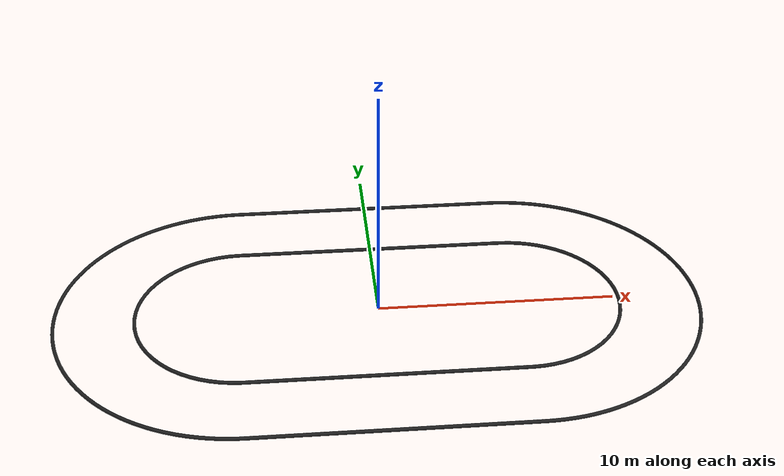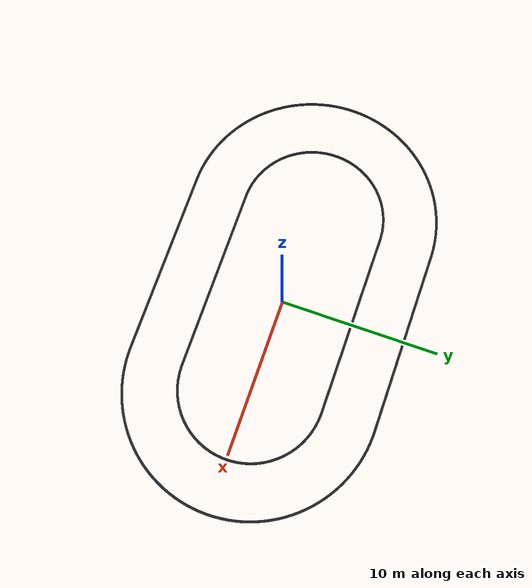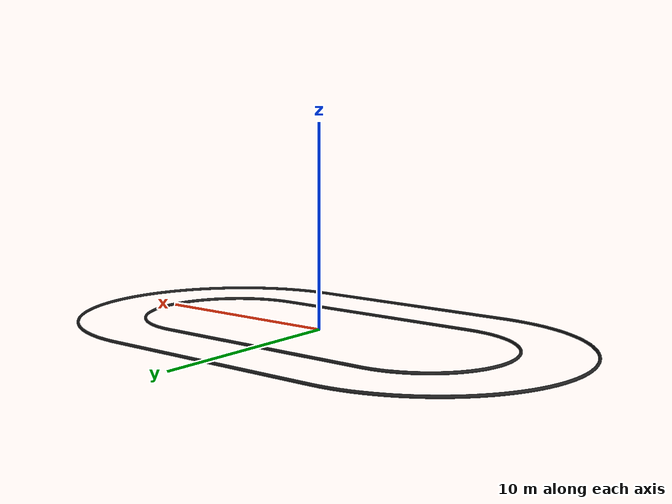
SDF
<?xml version="1.0"?>
<sdf version="1.5">
  <model name="track">
    <static>true</static>
    <link name="link">
      <collision name="collision">
        <geometry>
          <mesh>
            <uri>model://urdf/cad/autoRallyTrack.dae</uri>
            <scale>1.0 1.0 1.0</scale>
          </mesh>
        </geometry>
        <surface>
          <friction>
            <ode>
              <mu>100</mu>
              <mu2>50</mu2>
            </ode>
          </friction>
        </surface>
      </collision>
      <visual name="visual">
        <cast_shadows>false</cast_shadows>
        <geometry>
          <mesh>
            <uri>model://urdf/cad/autoRallyTrack.dae</uri>
            <scale>1.0 1.0 1.0</scale>
          </mesh>
        </geometry>
        <material>
          <script>
            <uri>model://urdf/gazebo.material</uri>
            <name>Gazebo/Black</name>
          </script>
        </material>
      </visual>
    </link>
  </model>
</sdf>
